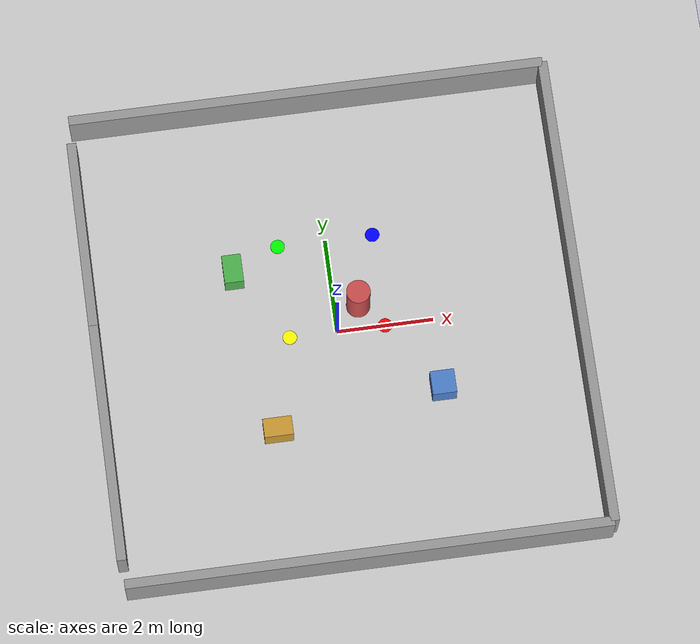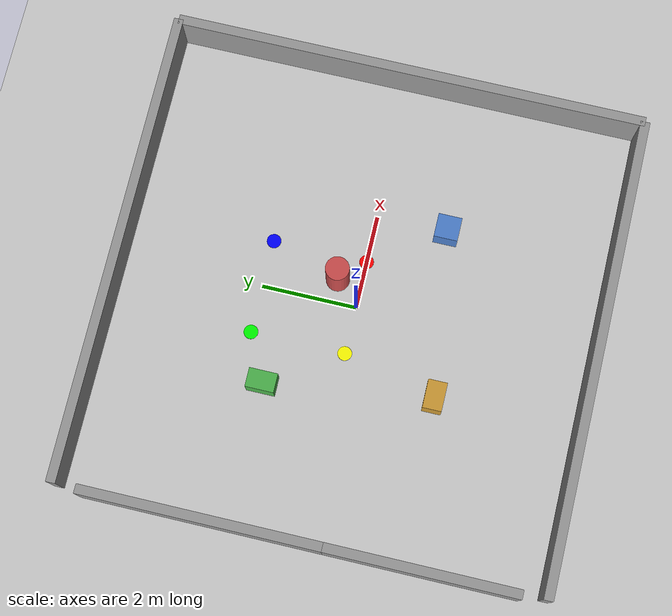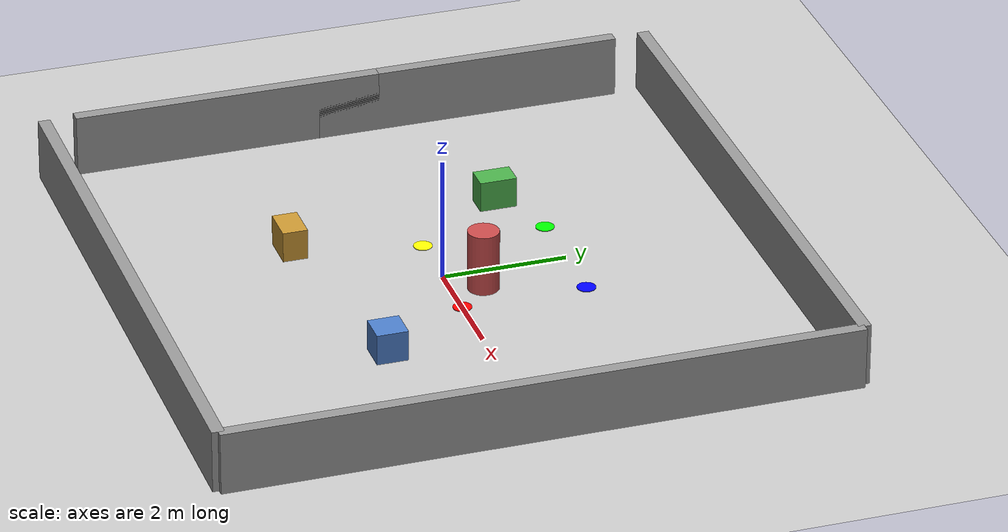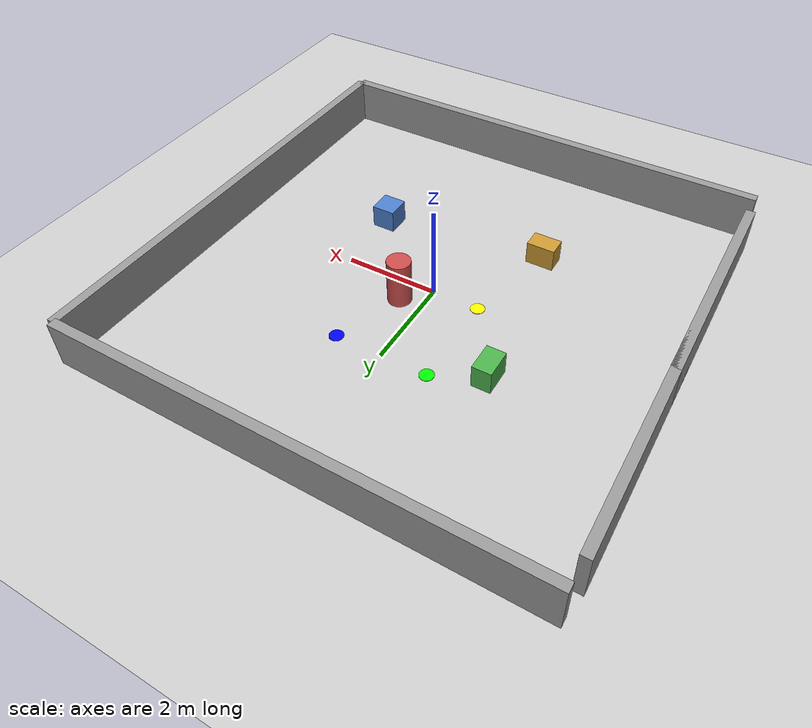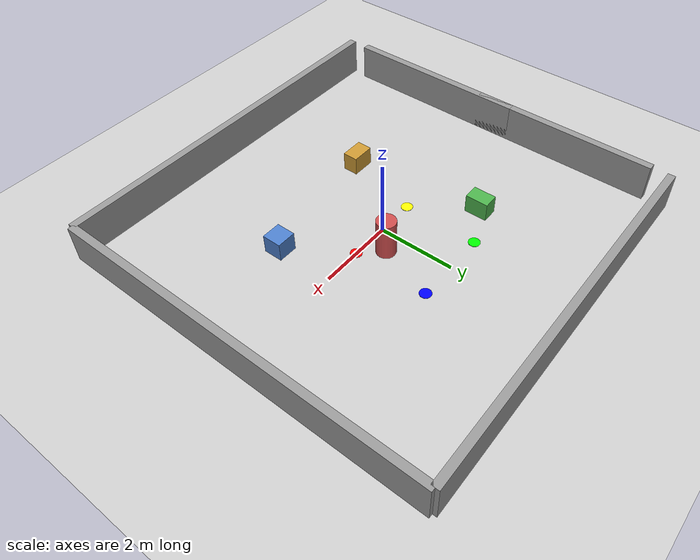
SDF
<?xml version="1.0"?>
<!-- LeKiwi 实验室仿真环境 — Gazebo World                                      -->
<!-- 功能: 提供一个包含围墙、障碍物的室内测试环境，用于导航和巡逻测试            -->
<!-- 大小: 10m x 10m 室内空间，含走廊和房间布局                                 -->
<sdf version="1.6">
  <world name="lekiwi_lab">

    <!-- === 物理引擎 === -->
    <physics type="ode">
      <max_step_size>0.001</max_step_size>
      <real_time_factor>1.0</real_time_factor>
      <real_time_update_rate>1000.0</real_time_update_rate>
      <gravity>0 0 -9.8</gravity>
    </physics>

    <!-- === 全局光照 === -->
    <scene>
      <ambient>0.4 0.4 0.4 1.0</ambient>
      <background>0.7 0.7 0.8 1.0</background>
      <shadows>true</shadows>
    </scene>

    <!-- === 太阳光 === -->
    <light name="sun" type="directional">
      <pose>0 0 30 0 0 0</pose>
      <diffuse>0.8 0.8 0.8 1.0</diffuse>
      <specular>0.2 0.2 0.2 1.0</specular>
      <direction>0 0.5 -0.8</direction>
    </light>

    <!-- === 地面 === -->
    <include>
      <uri>model://ground_plane</uri>
    </include>

    <!-- 实验室围墙 (10m x 10m) — 用简单的box拼成                            -->

    <!-- 北墙 -->
    <model name="wall_north">
      <static>true</static>
      <pose>0 5.0 0.5 0 0 0</pose>
      <link name="link">
        <collision name="collision">
          <geometry><box><size>10.0 0.2 1.0</size></box></geometry>
        </collision>
        <visual name="visual">
          <geometry><box><size>10.0 0.2 1.0</size></box></geometry>
          <material><ambient>0.6 0.6 0.6 1.0</ambient></material>
        </visual>
      </link>
    </model>

    <!-- 南墙 -->
    <model name="wall_south">
      <static>true</static>
      <pose>0 -5.0 0.5 0 0 0</pose>
      <link name="link">
        <collision name="collision">
          <geometry><box><size>10.0 0.2 1.0</size></box></geometry>
        </collision>
        <visual name="visual">
          <geometry><box><size>10.0 0.2 1.0</size></box></geometry>
          <material><ambient>0.6 0.6 0.6 1.0</ambient></material>
        </visual>
      </link>
    </model>

    <!-- 东墙 -->
    <model name="wall_east">
      <static>true</static>
      <pose>5.0 0 0.5 0 0 0</pose>
      <link name="link">
        <collision name="collision">
          <geometry><box><size>0.2 10.0 1.0</size></box></geometry>
        </collision>
        <visual name="visual">
          <geometry><box><size>0.2 10.0 1.0</size></box></geometry>
          <material><ambient>0.6 0.6 0.6 1.0</ambient></material>
        </visual>
      </link>
    </model>

    <!-- 西墙（中间开口作为走廊入口） -->
    <model name="wall_west_north">
      <static>true</static>
      <pose>-5.0 2.0 0.5 0 0 0</pose>
      <link name="link">
        <collision name="collision">
          <geometry><box><size>0.2 5.0 1.0</size></box></geometry>
        </collision>
        <visual name="visual">
          <geometry><box><size>0.2 5.0 1.0</size></box></geometry>
          <material><ambient>0.6 0.6 0.6 1.0</ambient></material>
        </visual>
      </link>
    </model>
    <model name="wall_west_south">
      <static>true</static>
      <pose>-5.0 -2.0 0.5 0 0 0</pose>
      <link name="link">
        <collision name="collision">
          <geometry><box><size>0.2 5.0 1.0</size></box></geometry>
        </collision>
        <visual name="visual">
          <geometry><box><size>0.2 5.0 1.0</size></box></geometry>
          <material><ambient>0.6 0.6 0.6 1.0</ambient></material>
        </visual>
      </link>
    </model>

    <!-- 室内障碍物 — 用于测试避障导航                                        -->

    <!-- 中心障碍物（圆柱） -->
    <model name="pillar_center">
      <static>true</static>
      <pose>0.5 0.5 0.5 0 0 0</pose>
      <link name="link">
        <collision name="collision">
          <geometry><cylinder><radius>0.25</radius><length>1.0</length></cylinder></geometry>
        </collision>
        <visual name="visual">
          <geometry><cylinder><radius>0.25</radius><length>1.0</length></cylinder></geometry>
          <material>
            <ambient>0.8 0.3 0.3 1.0</ambient>
          </material>
        </visual>
      </link>
    </model>

    <!-- 箱子障碍物1 -->
    <model name="box_obstacle_1">
      <static>true</static>
      <pose>2.0 -1.5 0.25 0 0 0</pose>
      <link name="link">
        <collision name="collision">
          <geometry><box><size>0.5 0.5 0.5</size></box></geometry>
        </collision>
        <visual name="visual">
          <geometry><box><size>0.5 0.5 0.5</size></box></geometry>
          <material>
            <ambient>0.3 0.5 0.8 1.0</ambient>
          </material>
        </visual>
      </link>
    </model>

    <!-- 箱子障碍物2 -->
    <model name="box_obstacle_2">
      <static>true</static>
      <pose>-2.0 1.5 0.25 0 0 0</pose>
      <link name="link">
        <collision name="collision">
          <geometry><box><size>0.4 0.6 0.5</size></box></geometry>
        </collision>
        <visual name="visual">
          <geometry><box><size>0.4 0.6 0.5</size></box></geometry>
          <material>
            <ambient>0.3 0.7 0.3 1.0</ambient>
          </material>
        </visual>
      </link>
    </model>

    <!-- 箱子障碍物3 -->
    <model name="box_obstacle_3">
      <static>true</static>
      <pose>-1.5 -2.0 0.25 0 0 0</pose>
      <link name="link">
        <collision name="collision">
          <geometry><box><size>0.6 0.4 0.5</size></box></geometry>
        </collision>
        <visual name="visual">
          <geometry><box><size>0.6 0.4 0.5</size></box></geometry>
          <material>
            <ambient>0.8 0.6 0.2 1.0</ambient>
          </material>
        </visual>
      </link>
    </model>

    <!-- 路点标记A -->
    <model name="marker_A">
      <static>true</static>
      <pose>1.0 0.0 0.02 0 0 0</pose>
      <link name="link">
        <visual name="visual">
          <geometry><cylinder><radius>0.15</radius><length>0.01</length></cylinder></geometry>
          <material>
            <ambient>1.0 0.0 0.0 1.0</ambient>
          </material>
        </visual>
      </link>
    </model>

    <!-- 路点标记B -->
    <model name="marker_B">
      <static>true</static>
      <pose>1.0 2.0 0.02 0 0 0</pose>
      <link name="link">
        <visual name="visual">
          <geometry><cylinder><radius>0.15</radius><length>0.01</length></cylinder></geometry>
          <material>
            <ambient>0.0 0.0 1.0 1.0</ambient>
          </material>
        </visual>
      </link>
    </model>

    <!-- 路点标记C -->
    <model name="marker_C">
      <static>true</static>
      <pose>-1.0 2.0 0.02 0 0 0</pose>
      <link name="link">
        <visual name="visual">
          <geometry><cylinder><radius>0.15</radius><length>0.01</length></cylinder></geometry>
          <material>
            <ambient>0.0 1.0 0.0 1.0</ambient>
          </material>
        </visual>
      </link>
    </model>

    <!-- 路点标记D -->
    <model name="marker_D">
      <static>true</static>
      <pose>-1.0 0.0 0.02 0 0 0</pose>
      <link name="link">
        <visual name="visual">
          <geometry><cylinder><radius>0.15</radius><length>0.01</length></cylinder></geometry>
          <material>
            <ambient>1.0 1.0 0.0 1.0</ambient>
          </material>
        </visual>
      </link>
    </model>

  </world>
</sdf>
